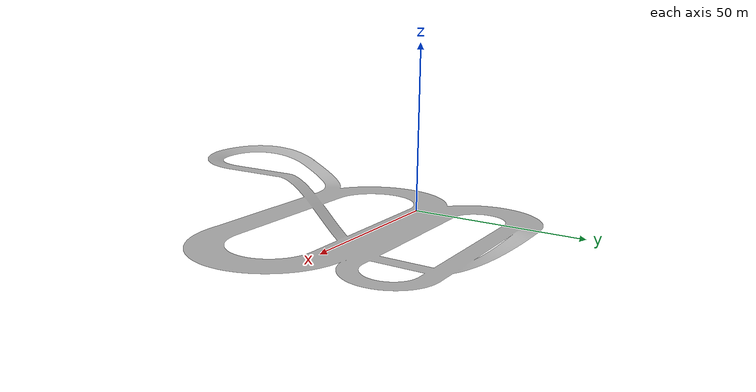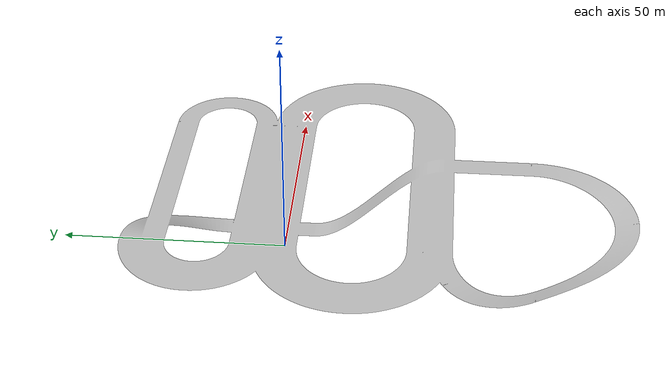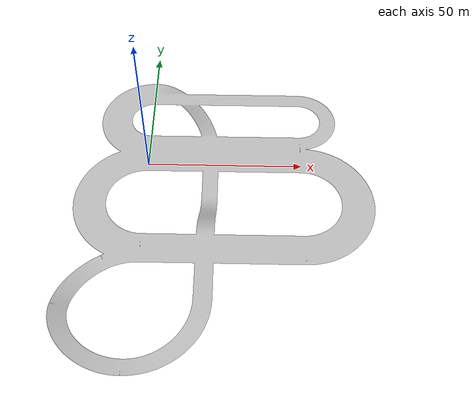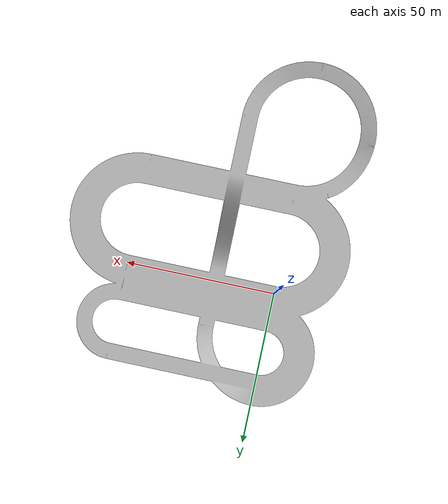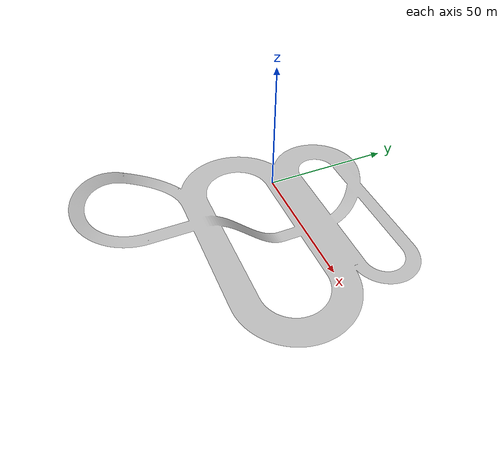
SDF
<?xml version="1.0" ?>
<sdf version="1.6">
  <model name="circuit_road">
    <pose>0 0 0 0 0 0</pose>
    <static>true</static>
    <link name="link">
      <collision name="collision">
        <geometry>
          <mesh>
            <uri>model://circuit_road/meshes/circuit_road.obj</uri>
            <scale>1 1 1</scale>
          </mesh>
        </geometry>
      </collision>

      <visual name="visual">
        <geometry>
          <mesh>
            <uri>model://circuit_road/meshes/circuit_road.obj</uri>
            <scale>1 1 1</scale>
          </mesh>
        </geometry>
      </visual>
    </link>
  </model>
</sdf>
